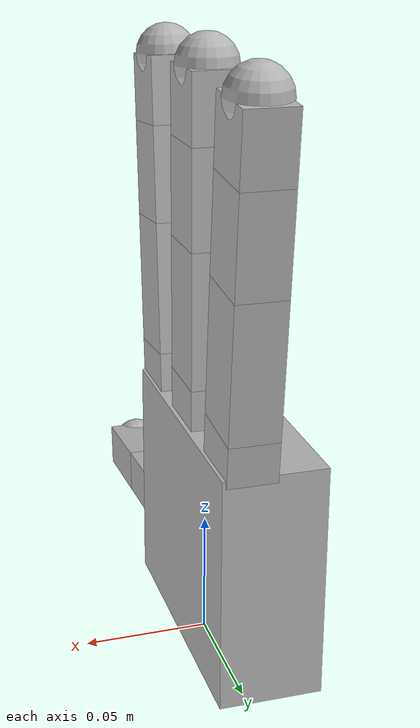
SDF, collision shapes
<?xml version='1.0'?>
<sdf version='1.6'>
  <model name='allegro_hand_left'>
    <joint name='weld_base' type='fixed' drake_ignore='true'>
      <parent>world</parent>
      <child>hand_root</child>
      <pose>0 0 0 0 0 0</pose>
    </joint>
    <link name='hand_root'>
      <pose frame=''>0 0 0 0 -0 0</pose>
      <inertial>
        <pose frame=''>0 0 0.1425 0 -0 0</pose>
        <mass>0.4154</mass>
        <inertia>
          <ixx>0.0001</ixx>
          <ixy>0</ixy>
          <ixz>0</ixz>
          <iyy>0.0001</iyy>
          <iyz>0</iyz>
          <izz>0.0001</izz>
        </inertia>
      </inertial>
      <collision name='hand_root_fixed_joint_lump__palm_link_collision'>
        <pose frame=''>-0.0093 0 0.0475 0 -0 0</pose>
        <geometry>
          <box>
            <size>0.0408 0.113 0.095</size>
          </box>
        </geometry>
      </collision>
      <visual name='hand_root_fixed_joint_lump__palm_link_visual'>
        <pose frame=''>0 0 0.095 -1.5708 0 0</pose>
        <geometry>
          <mesh>
            <scale>1 1 1</scale>
            <uri>../meshes/base_link_left.obj</uri>
          </mesh>
        </geometry>
      </visual>
    </link>
    <link name='link_8'>
      <pose frame=''>0 0.0435 0.093458 -0.087267 0 0</pose>
      <inertial>
        <pose frame=''>0 0 0 0 -0 0</pose>
        <mass>0.0119</mass>
        <inertia>
          <ixx>1.01667e-06</ixx>
          <ixy>0</ixy>
          <ixz>0</ixz>
          <iyy>6.47677e-07</iyy>
          <iyz>0</iyz>
          <izz>1.01667e-06</izz>
        </inertia>
      </inertial>
      <collision name='link_8_collision'>
        <pose frame=''>0 0 0.0082 0 -0 0</pose>
        <geometry>
          <box>
            <size>0.0196 0.0275 0.0164</size>
          </box>
        </geometry>
      </collision>
      <visual name='link_8_visual'>
        <pose frame=''>0 0 0 0 -0 0</pose>
        <geometry>
          <mesh>
            <scale>1 1 1</scale>
            <uri>../meshes/link_0.0.obj</uri>
          </mesh>
        </geometry>
      </visual>
    </link>
    <joint name='joint_8' type='revolute'>
      <child>link_8</child>
      <parent>hand_root</parent>
      <axis>
        <xyz>0 0.087156 0.996195</xyz>
        <limit>
          <lower>-0.47</lower>
          <upper>0.47</upper>
          <effort>15</effort>
          <velocity>7</velocity>
        </limit>
        <dynamics>
          <damping>1e-2</damping>
          <friction>10</friction>
          <spring_reference>0</spring_reference>
          <spring_stiffness>0</spring_stiffness>
        </dynamics>
        <use_parent_model_frame>1</use_parent_model_frame>
      </axis>
    </joint>
    <link name='link_9'>
      <pose frame=''>0 0.044929 0.109796 -0.087267 0 0</pose>
      <inertial>
        <pose frame=''>0 0 0 0 -0 0</pose>
        <mass>0.065</mass>
        <inertia>
          <ixx>7.95654e-05</ixx>
          <ixy>1.7199e-050</ixy>
          <ixz>8.75875e-060</ixz>
          <iyy>2.47089e-05</iyy>
          <iyz>2.41313e-050</iyz>
          <izz>7.95654e-05</izz>
        </inertia>
      </inertial>
      <collision name='link_9_collision'>
        <pose frame=''>0 0 0.027 0 -0 0</pose>
        <geometry>
          <box>
            <size>0.0196 0.0275 0.054</size>
          </box>
        </geometry>
      </collision>
      <visual name='link_9_visual'>
        <pose frame=''>0 0 0 0 -0 0</pose>
        <geometry>
          <mesh>
            <scale>1 1 1</scale>
            <uri>../meshes/link_1.0.obj</uri>
          </mesh>
        </geometry>
      </visual>
    </link>
    <joint name='joint_9' type='revolute'>
      <child>link_9</child>
      <parent>link_8</parent>
      <axis>
        <xyz>0 0.996195 -0.087156</xyz>
        <limit>
          <lower>-0.196</lower>
          <upper>1.61</upper>
          <effort>15</effort>
          <velocity>7</velocity>
        </limit>
        <dynamics>
          <damping>1e-2</damping>
          <friction>5</friction>
          <spring_reference>0</spring_reference>
          <spring_stiffness>0</spring_stiffness>
        </dynamics>
        <use_parent_model_frame>1</use_parent_model_frame>
      </axis>
    </joint>
    <link name='link_10'>
      <pose frame=''>0 0.049636 0.16359 -0.087267 0 0</pose>
      <inertial>
        <pose frame=''>0 0 0 0 -0 0</pose>
        <mass>0.0355</mass>
        <inertia>
          <ixx>2.63979e-05</ixx>
          <ixy>6.67968e-060</ixy>
          <ixz>4.78363e-060</ixz>
          <iyy>1.34949e-05</iyy>
          <iyz>9.372e-060</iyz>
          <izz>2.63979e-05</izz>
        </inertia>
      </inertial>
      <collision name='link_10_collision'>
        <pose frame=''>0 0 0.0192 0 -0 0</pose>
        <geometry>
          <box>
            <size>0.0196 0.0275 0.0384</size>
          </box>
        </geometry>
      </collision>
      <visual name='link_10_visual'>
        <pose frame=''>0 0 0 0 -0 0</pose>
        <geometry>
          <mesh>
            <scale>1 1 1</scale>
            <uri>../meshes/link_2.0.obj</uri>
          </mesh>
        </geometry>
      </visual>
    </link>
    <joint name='joint_10' type='revolute'>
      <child>link_10</child>
      <parent>link_9</parent>
      <axis>
        <xyz>0 0.996195 -0.087156</xyz>
        <limit>
          <lower>-0.174</lower>
          <upper>1.709</upper>
          <effort>15</effort>
          <velocity>7</velocity>
        </limit>
        <dynamics>
          <damping>2.5e-2</damping>
          <friction>10</friction>
          <spring_reference>0</spring_reference>
          <spring_stiffness>0</spring_stiffness>
        </dynamics>
        <use_parent_model_frame>1</use_parent_model_frame>
      </axis>
    </joint>
    <link name='link_11'>
      <pose frame=''>0 0.052983 0.201844 -0.087267 0 0</pose>
      <inertial>
        <pose frame=''>0 0 0.016991 0 -0 0</pose>
        <mass>0.0264</mass>
        <inertia>
          <ixx>1.00244e-05</ixx>
          <ixy>1.25597e-06</ixy>
          <ixz>1.2936e-06</ixz>
          <iyy>8.97242e-06</iyy>
          <iyz>1.7622e-06</iyz>
          <izz>5.66925e-06</izz>
        </inertia>
      </inertial>
      <collision name='link_11_collision'>
        <pose frame=''>0 0 0.01335 0 -0 0</pose>
        <geometry>
          <box>
            <size>0.0196 0.0275 0.0267</size>
          </box>
        </geometry>
      </collision>
      <collision name='link_11_tip_collision_1'>
        <pose frame=''>0 0 0.0267 0 -0 0</pose>
        <geometry>
          <sphere>
            <radius>0.012</radius>
          </sphere>
        </geometry>
      </collision>
      <visual name='link_11_visual'>
        <pose frame=''>0 0 0 0 -0 0</pose>
        <geometry>
          <mesh>
            <scale>1 1 1</scale>
            <uri>../meshes/link_3.0.obj</uri>
          </mesh>
        </geometry>
      </visual>
      <visual name='link_11_tip_visual_1'>
        <pose frame=''>0 0 0.0267 0 -0 0</pose>
        <geometry>
          <mesh>
            <scale>1 1 1</scale>
            <uri>../meshes/link_3.0_tip.obj</uri>
          </mesh>
        </geometry>
      </visual>
    </link>
    <joint name='joint_11' type='revolute'>
      <child>link_11</child>
      <parent>link_10</parent>
      <axis>
        <xyz>0 0.996195 -0.087156</xyz>
        <limit>
          <lower>-0.227</lower>
          <upper>1.618</upper>
          <effort>15</effort>
          <velocity>7</velocity>
        </limit>
        <dynamics>
          <damping>3.2e-2</damping>
          <friction>12</friction>
          <spring_reference>0</spring_reference>
          <spring_stiffness>0</spring_stiffness>
        </dynamics>
        <use_parent_model_frame>1</use_parent_model_frame>
      </axis>
    </joint>
    <link name='link_12'>
      <pose frame=''>-0.0182 -0.019333 0.049013 -3.14159 -1.48353 -1.5708</pose>
      <inertial>
        <pose frame=''>0 0 0 0 -0 0</pose>
        <mass>0.0176</mass>
        <inertia>
          <ixx>1.89273e-05</ixx>
          <ixy>7.16716e-060</ixy>
          <ixz>5.35568e-060</ixz>
          <iyy>1.43008e-05</iyy>
          <iyz>6.8068e-060</iyz>
          <izz>1.89273e-05</izz>
        </inertia>
      </inertial>
      <collision name='link_12_collision'>
        <pose frame=''>-0.0179 0.009 0.0145 0 -0 0</pose>
        <geometry>
          <box>
            <size>0.0358 0.034 0.0455</size>
          </box>
        </geometry>
      </collision>
      <visual name='link_12_visual'>
        <pose frame=''>0 0 0 3.14159 -0 0</pose>
        <geometry>
          <mesh>
            <scale>1 1 1</scale>
            <uri>../meshes/link_12.0_left.obj</uri>
          </mesh>
        </geometry>
      </visual>
    </link>
    <joint name='joint_12' type='revolute'>
      <child>link_12</child>
      <parent>hand_root</parent>
      <axis>
        <xyz>-0 -0.087156 0.996195</xyz>
        <limit>
          <lower>0.263</lower>
          <upper>1.396</upper>
          <effort>15</effort>
          <velocity>7</velocity>
        </limit>
        <dynamics>
          <damping>1e-2</damping>
          <friction>10</friction>
          <spring_reference>0</spring_reference>
          <spring_stiffness>0</spring_stiffness>
        </dynamics>
        <use_parent_model_frame>1</use_parent_model_frame>
      </axis>
    </joint>
    <link name='link_13'>
      <pose frame=''>-0.0132 -0.056728 0.018638 -3.14159 -1.48353 -1.5708</pose>
      <inertial>
        <pose frame=''>0 0 0 0 -0 0</pose>
        <mass>0.0119</mass>
        <inertia>
          <ixx>4.24251e-06</ixx>
          <ixy>1.03209e-060</ixy>
          <ixz>1.60353e-060</ixz>
          <iyy>4.52363e-06</iyy>
          <iyz>1.44808e-060</iyz>
          <izz>4.24251e-06</izz>
        </inertia>
      </inertial>
      <collision name='link_13_collision'>
        <pose frame=''>0 0 0.00885 0 -0 0</pose>
        <geometry>
          <box>
            <size>0.0196 0.0275 0.0177</size>
          </box>
        </geometry>
      </collision>
      <visual name='link_13_visual'>
        <pose frame=''>0 0 0 0 -0 0</pose>
        <geometry>
          <mesh>
            <scale>1 1 1</scale>
            <uri>../meshes/link_13.0.obj</uri>
          </mesh>
        </geometry>
      </visual>
    </link>
    <joint name='joint_13' type='revolute'>
      <child>link_13</child>
      <parent>link_12</parent>
      <axis>
        <xyz>0 0.996195 0.087156</xyz>
        <limit>
          <lower>-0.105</lower>
          <upper>1.163</upper>
          <effort>15</effort>
          <velocity>7</velocity>
        </limit>
        <dynamics>
          <damping>1e-2</damping>
          <friction>5</friction>
          <spring_reference>0</spring_reference>
          <spring_stiffness>0</spring_stiffness>
        </dynamics>
        <use_parent_model_frame>1</use_parent_model_frame>
      </axis>
    </joint>
    <link name='link_14'>
      <pose frame=''>-0.0132 -0.074361 0.017096 -3.14159 -1.48353 -1.5708</pose>
      <inertial>
        <pose frame=''>0 0 0 0 -0 0</pose>
        <mass>0.038</mass>
        <inertia>
          <ixx>4.3044e-05</ixx>
          <ixy>9.57068e-060</ixy>
          <ixz>5.1205e-060</ixz>
          <iyy>1.44452e-05</iyy>
          <iyz>1.34282e-050</iyz>
          <izz>4.3044e-05</izz>
        </inertia>
      </inertial>
      <collision name='link_14_collision'>
        <pose frame=''>0 0 0.0257 0 -0 0</pose>
        <geometry>
          <box>
            <size>0.0196 0.0275 0.0514</size>
          </box>
        </geometry>
      </collision>
      <visual name='link_14_visual'>
        <pose frame=''>0 0 0 0 -0 0</pose>
        <geometry>
          <mesh>
            <scale>1 1 1</scale>
            <uri>../meshes/link_14.0.obj</uri>
          </mesh>
        </geometry>
      </visual>
    </link>
    <joint name='joint_14' type='revolute'>
      <child>link_14</child>
      <parent>link_13</parent>
      <axis>
        <xyz>-1 0 -0</xyz>
        <limit>
          <lower>-0.189</lower>
          <upper>1.644</upper>
          <effort>15</effort>
          <velocity>7</velocity>
        </limit>
        <dynamics>
          <damping>1e-2</damping>
          <friction>10</friction>
          <spring_reference>0</spring_reference>
          <spring_stiffness>0</spring_stiffness>
        </dynamics>
        <use_parent_model_frame>1</use_parent_model_frame>
      </axis>
    </joint>
    <link name='link_15'>
      <pose frame=''>-0.0132 -0.125565 0.012616 -3.14159 -1.48353 -1.5708</pose>
      <inertial>
        <pose frame=''>0 0 0.012781 0 -0 0</pose>
        <mass>0.0556</mass>
        <inertia>
          <ixx>5.48675e-05</ixx>
          <ixy>8.04208e-06</ixy>
          <ixz>5.2283e-06</ixz>
          <iyy>3.66945e-05</iyy>
          <iyz>1.12835e-05</iyz>
          <izz>3.38903e-05</izz>
        </inertia>
      </inertial>
      <collision name='link_15_collision'>
        <pose frame=''>0 0 0.02115 0 -0 0</pose>
        <geometry>
          <box>
            <size>0.0196 0.0275 0.0423</size>
          </box>
        </geometry>
      </collision>
      <collision name='link_15_tip_collision_1'>
        <pose frame=''>0 0 0.0423 0 -0 0</pose>
        <geometry>
          <sphere>
            <radius>0.012</radius>
          </sphere>
        </geometry>
      </collision>
      <visual name='link_15_visual'>
        <pose frame=''>0 0 0 0 -0 0</pose>
        <geometry>
          <mesh>
            <scale>1 1 1</scale>
            <uri>../meshes/link_15.0.obj</uri>
          </mesh>
        </geometry>
      </visual>
      <visual name='link_15_tip_visual_1'>
        <pose frame=''>0 0 0.0423 0 -0 0</pose>
        <geometry>
          <mesh>
            <scale>1 1 1</scale>
            <uri>../meshes/link_15.0_tip.obj</uri>
          </mesh>
        </geometry>
      </visual>
    </link>
    <joint name='joint_15' type='revolute'>
      <child>link_15</child>
      <parent>link_14</parent>
      <axis>
        <xyz>-1 0 -0</xyz>
        <limit>
          <lower>-0.162</lower>
          <upper>1.719</upper>
          <effort>15</effort>
          <velocity>7</velocity>
        </limit>
        <dynamics>
          <damping>1e-2</damping>
          <friction>12</friction>
          <spring_reference>0</spring_reference>
          <spring_stiffness>0</spring_stiffness>
        </dynamics>
        <use_parent_model_frame>1</use_parent_model_frame>
      </axis>
    </joint>
    <link name='link_4'>
      <pose frame=''>0 0 0.0957 0 -0 0</pose>
      <inertial>
        <pose frame=''>0 0 0 0 -0 0</pose>
        <mass>0.0119</mass>
        <inertia>
          <ixx>1.01667e-06</ixx>
          <ixy>0</ixy>
          <ixz>0</ixz>
          <iyy>6.47677e-07</iyy>
          <iyz>0</iyz>
          <izz>1.01667e-06</izz>
        </inertia>
      </inertial>
      <collision name='link_4_collision'>
        <pose frame=''>0 0 0.0082 0 -0 0</pose>
        <geometry>
          <box>
            <size>0.0196 0.0275 0.0164</size>
          </box>
        </geometry>
      </collision>
      <visual name='link_4_visual'>
        <pose frame=''>0 0 0 0 -0 0</pose>
        <geometry>
          <mesh>
            <scale>1 1 1</scale>
            <uri>../meshes/link_0.0.obj</uri>
          </mesh>
        </geometry>
      </visual>
    </link>
    <joint name='joint_4' type='revolute'>
      <child>link_4</child>
      <parent>hand_root</parent>
      <axis>
        <xyz>0 0 1</xyz>
        <limit>
          <lower>-0.47</lower>
          <upper>0.47</upper>
          <effort>15</effort>
          <velocity>7</velocity>
        </limit>
        <dynamics>
          <damping>1e-2</damping>
          <friction>10</friction>
          <spring_reference>0</spring_reference>
          <spring_stiffness>0</spring_stiffness>
        </dynamics>
        <use_parent_model_frame>1</use_parent_model_frame>
      </axis>
    </joint>
    <link name='link_5'>
      <pose frame=''>0 0 0.1121 0 -0 0</pose>
      <inertial>
        <pose frame=''>0 0 0 0 -0 0</pose>
        <mass>0.065</mass>
        <inertia>
          <ixx>7.95654e-05</ixx>
          <ixy>1.7199e-050</ixy>
          <ixz>8.75875e-060</ixz>
          <iyy>2.47089e-05</iyy>
          <iyz>2.41313e-050</iyz>
          <izz>7.95654e-05</izz>
        </inertia>
      </inertial>
      <collision name='link_5_collision'>
        <pose frame=''>0 0 0.027 0 -0 0</pose>
        <geometry>
          <box>
            <size>0.0196 0.0275 0.054</size>
          </box>
        </geometry>
      </collision>
      <visual name='link_5_visual'>
        <pose frame=''>0 0 0 0 -0 0</pose>
        <geometry>
          <mesh>
            <scale>1 1 1</scale>
            <uri>../meshes/link_1.0.obj</uri>
          </mesh>
        </geometry>
      </visual>
    </link>
    <joint name='joint_5' type='revolute'>
      <child>link_5</child>
      <parent>link_4</parent>
      <axis>
        <xyz>0 1 0</xyz>
        <limit>
          <lower>-0.196</lower>
          <upper>1.61</upper>
          <effort>15</effort>
          <velocity>7</velocity>
        </limit>
        <dynamics>
          <damping>1e-2</damping>
          <friction>5</friction>
          <spring_reference>0</spring_reference>
          <spring_stiffness>0</spring_stiffness>
        </dynamics>
        <use_parent_model_frame>1</use_parent_model_frame>
      </axis>
    </joint>
    <link name='link_6'>
      <pose frame=''>0 0 0.1661 0 -0 0</pose>
      <inertial>
        <pose frame=''>0 0 0 0 -0 0</pose>
        <mass>0.0355</mass>
        <inertia>
          <ixx>2.63979e-05</ixx>
          <ixy>6.67968e-060</ixy>
          <ixz>4.78363e-060</ixz>
          <iyy>1.34949e-05</iyy>
          <iyz>9.372e-060</iyz>
          <izz>2.63979e-05</izz>
        </inertia>
      </inertial>
      <collision name='link_6_collision'>
        <pose frame=''>0 0 0.0192 0 -0 0</pose>
        <geometry>
          <box>
            <size>0.0196 0.0275 0.0384</size>
          </box>
        </geometry>
      </collision>
      <visual name='link_6_visual'>
        <pose frame=''>0 0 0 0 -0 0</pose>
        <geometry>
          <mesh>
            <scale>1 1 1</scale>
            <uri>../meshes/link_2.0.obj</uri>
          </mesh>
        </geometry>
      </visual>
    </link>
    <joint name='joint_6' type='revolute'>
      <child>link_6</child>
      <parent>link_5</parent>
      <axis>
        <xyz>0 1 0</xyz>
        <limit>
          <lower>-0.174</lower>
          <upper>1.709</upper>
          <effort>15</effort>
          <velocity>7</velocity>
        </limit>
        <dynamics>
          <damping>2.5e-2</damping>
          <friction>10</friction>
          <spring_reference>0</spring_reference>
          <spring_stiffness>0</spring_stiffness>
        </dynamics>
        <use_parent_model_frame>1</use_parent_model_frame>
      </axis>
    </joint>
    <link name='link_7'>
      <pose frame=''>0 0 0.2045 0 -0 0</pose>
      <inertial>
        <pose frame=''>0 0 0.016991 0 -0 0</pose>
        <mass>0.0264</mass>
        <inertia>
          <ixx>1.00244e-05</ixx>
          <ixy>1.25597e-06</ixy>
          <ixz>1.2936e-06</ixz>
          <iyy>8.97242e-06</iyy>
          <iyz>1.7622e-06</iyz>
          <izz>5.66925e-06</izz>
        </inertia>
      </inertial>
      <collision name='link_7_collision'>
        <pose frame=''>0 0 0.01335 0 -0 0</pose>
        <geometry>
          <box>
            <size>0.0196 0.0275 0.0267</size>
          </box>
        </geometry>
      </collision>
      <collision name='link_7_tip_collision_1'>
        <pose frame=''>0 0 0.0267 0 -0 0</pose>
        <geometry>
          <sphere>
            <radius>0.012</radius>
          </sphere>
        </geometry>
      </collision>
      <visual name='link_7_visual'>
        <pose frame=''>0 0 0 0 -0 0</pose>
        <geometry>
          <mesh>
            <scale>1 1 1</scale>
            <uri>../meshes/link_3.0.obj</uri>
          </mesh>
        </geometry>
      </visual>
      <visual name='link_7_tip_visual_1'>
        <pose frame=''>0 0 0.0267 0 -0 0</pose>
        <geometry>
          <mesh>
            <scale>1 1 1</scale>
            <uri>../meshes/link_3.0_tip.obj</uri>
          </mesh>
        </geometry>
      </visual>
    </link>
    <joint name='joint_7' type='revolute'>
      <child>link_7</child>
      <parent>link_6</parent>
      <axis>
        <xyz>0 1 0</xyz>
        <limit>
          <lower>-0.227</lower>
          <upper>1.618</upper>
          <effort>15</effort>
          <velocity>7</velocity>
        </limit>
        <dynamics>
          <damping>3.2e-2</damping>
          <friction>12</friction>
          <spring_reference>0</spring_reference>
          <spring_stiffness>0</spring_stiffness>
        </dynamics>
        <use_parent_model_frame>1</use_parent_model_frame>
      </axis>
    </joint>
    <link name='link_0'>
      <pose frame=''>0 -0.0435 0.093458 0.087267 -0 0</pose>
      <inertial>
        <pose frame=''>0 0 0 0 -0 0</pose>
        <mass>0.0119</mass>
        <inertia>
          <ixx>1.01667e-06</ixx>
          <ixy>0</ixy>
          <ixz>0</ixz>
          <iyy>6.47677e-07</iyy>
          <iyz>0</iyz>
          <izz>1.01667e-06</izz>
        </inertia>
      </inertial>
      <collision name='link_0_collision'>
        <pose frame=''>0 0 0.0082 0 -0 0</pose>
        <geometry>
          <box>
            <size>0.0196 0.0275 0.0164</size>
          </box>
        </geometry>
      </collision>
      <visual name='link_0_visual'>
        <pose frame=''>0 0 0 0 -0 0</pose>
        <geometry>
          <mesh>
            <scale>1 1 1</scale>
            <uri>../meshes/link_0.0.obj</uri>
          </mesh>
        </geometry>
      </visual>
    </link>
    <joint name='joint_0' type='revolute'>
      <child>link_0</child>
      <parent>hand_root</parent>
      <axis>
        <xyz>0 -0.087156 0.996195</xyz>
        <limit>
          <lower>-0.47</lower>
          <upper>0.47</upper>
          <effort>15</effort>
          <velocity>7</velocity>
        </limit>
        <dynamics>
          <damping>1e-2</damping>
          <friction>10</friction>
          <spring_reference>0</spring_reference>
          <spring_stiffness>0</spring_stiffness>
        </dynamics>
        <use_parent_model_frame>1</use_parent_model_frame>
      </axis>
    </joint>
    <link name='link_1'>
      <pose frame=''>0 -0.044929 0.109796 0.087267 -0 0</pose>
      <inertial>
        <pose frame=''>0 0 0 0 -0 0</pose>
        <mass>0.065</mass>
        <inertia>
          <ixx>7.95654e-05</ixx>
          <ixy>1.7199e-050</ixy>
          <ixz>8.75875e-060</ixz>
          <iyy>2.47089e-05</iyy>
          <iyz>2.41313e-050</iyz>
          <izz>7.95654e-05</izz>
        </inertia>
      </inertial>
      <collision name='link_1_collision'>
        <pose frame=''>0 0 0.027 0 -0 0</pose>
        <geometry>
          <box>
            <size>0.0196 0.0275 0.054</size>
          </box>
        </geometry>
      </collision>
      <visual name='link_1_visual'>
        <pose frame=''>0 0 0 0 -0 0</pose>
        <geometry>
          <mesh>
            <scale>1 1 1</scale>
            <uri>../meshes/link_1.0.obj</uri>
          </mesh>
        </geometry>
      </visual>
    </link>
    <joint name='joint_1' type='revolute'>
      <child>link_1</child>
      <parent>link_0</parent>
      <axis>
        <xyz>0 0.996195 0.087156</xyz>
        <limit>
          <lower>-0.196</lower>
          <upper>1.61</upper>
          <effort>15</effort>
          <velocity>7</velocity>
        </limit>
        <dynamics>
          <damping>1e-2</damping>
          <friction>5</friction>
          <spring_reference>0</spring_reference>
          <spring_stiffness>0</spring_stiffness>
        </dynamics>
        <use_parent_model_frame>1</use_parent_model_frame>
      </axis>
    </joint>
    <link name='link_2'>
      <pose frame=''>0 -0.049636 0.16359 0.087267 -0 0</pose>
      <inertial>
        <pose frame=''>0 0 0 0 -0 0</pose>
        <mass>0.0355</mass>
        <inertia>
          <ixx>2.63979e-05</ixx>
          <ixy>6.67968e-060</ixy>
          <ixz>4.78363e-060</ixz>
          <iyy>1.34949e-05</iyy>
          <iyz>9.372e-060</iyz>
          <izz>2.63979e-05</izz>
        </inertia>
      </inertial>
      <collision name='link_2_collision'>
        <pose frame=''>0 0 0.0192 0 -0 0</pose>
        <geometry>
          <box>
            <size>0.0196 0.0275 0.0384</size>
          </box>
        </geometry>
      </collision>
      <visual name='link_2_visual'>
        <pose frame=''>0 0 0 0 -0 0</pose>
        <geometry>
          <mesh>
            <scale>1 1 1</scale>
            <uri>../meshes/link_2.0.obj</uri>
          </mesh>
        </geometry>
      </visual>
    </link>
    <joint name='joint_2' type='revolute'>
      <child>link_2</child>
      <parent>link_1</parent>
      <axis>
        <xyz>0 0.996195 0.087156</xyz>
        <limit>
          <lower>-0.174</lower>
          <upper>1.709</upper>
          <effort>15</effort>
          <velocity>7</velocity>
        </limit>
        <dynamics>
          <damping>2.5e-2</damping>
          <friction>10</friction>
          <spring_reference>0</spring_reference>
          <spring_stiffness>0</spring_stiffness>
        </dynamics>
        <use_parent_model_frame>1</use_parent_model_frame>
      </axis>
    </joint>
    <link name='link_3'>
      <pose frame=''>0 -0.052983 0.201844 0.087267 -0 0</pose>
      <inertial>
        <pose frame=''>0 0 0.016991 0 -0 0</pose>
        <mass>0.0264</mass>
        <inertia>
          <ixx>1.00244e-05</ixx>
          <ixy>1.25597e-06</ixy>
          <ixz>1.2936e-06</ixz>
          <iyy>8.97242e-06</iyy>
          <iyz>1.7622e-06</iyz>
          <izz>5.66925e-06</izz>
        </inertia>
      </inertial>
      <collision name='link_3_collision'>
        <pose frame=''>0 0 0.01335 0 -0 0</pose>
        <geometry>
          <box>
            <size>0.0196 0.0275 0.0267</size>
          </box>
        </geometry>
      </collision>
      <collision name='link_3_tip_collision_1'>
        <pose frame=''>0 0 0.0267 0 -0 0</pose>
        <geometry>
          <sphere>
            <radius>0.012</radius>
          </sphere>
        </geometry>
      </collision>
      <visual name='link_3_visual'>
        <pose frame=''>0 0 0 0 -0 0</pose>
        <geometry>
          <mesh>
            <scale>1 1 1</scale>
            <uri>../meshes/link_3.0.obj</uri>
          </mesh>
        </geometry>
      </visual>
      <visual name='link_3_tip_visual_1'>
        <pose frame=''>0 0 0.0267 0 -0 0</pose>
        <geometry>
          <mesh>
            <scale>1 1 1</scale>
            <uri>../meshes/link_3.0_tip.obj</uri>
          </mesh>
        </geometry>
      </visual>
    </link>
    <joint name='joint_3' type='revolute'>
      <child>link_3</child>
      <parent>link_2</parent>
      <axis>
        <xyz>0 0.996195 0.087156</xyz>
        <limit>
          <lower>-0.227</lower>
          <upper>1.618</upper>
          <effort>15</effort>
          <velocity>7</velocity>
        </limit>
        <dynamics>
          <damping>3.2e-2</damping>
          <friction>12</friction>
          <spring_reference>0</spring_reference>
          <spring_stiffness>0</spring_stiffness>
        </dynamics>
        <use_parent_model_frame>1</use_parent_model_frame>
      </axis>
    </joint>
  </model>
</sdf>
